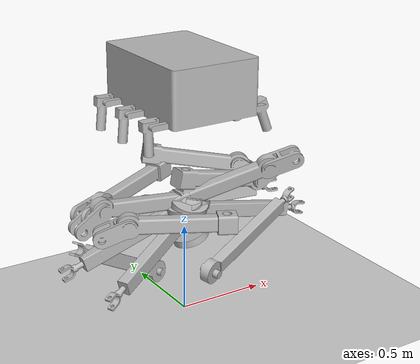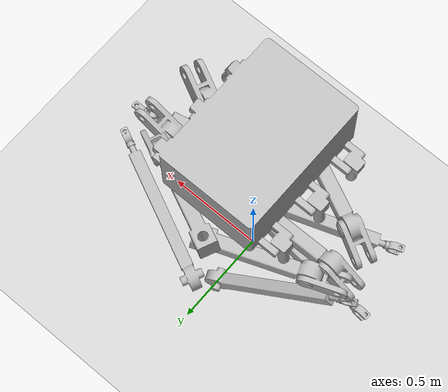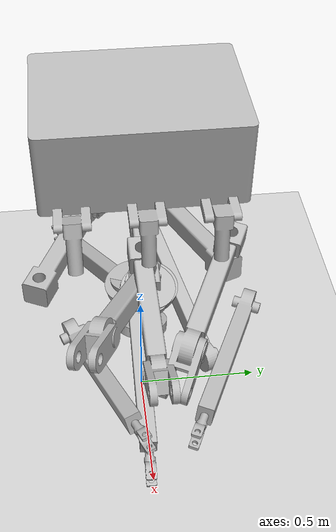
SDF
<?xml version="1.0"?>
<sdf version="1.6">
  <world name="default">
    <scene><ambient>0.55 0.55 0.55 1</ambient><background>0.7 0.7 0.75 1</background><shadows>false</shadows></scene>
    <light type="directional" name="sun"><pose>0 0 10 0 0 0</pose><diffuse>0.9 0.9 0.9 1</diffuse><specular>0.2 0.2 0.2 1</specular><direction>-0.5 0.3 -1</direction></light>
    <include><uri>model://ground_plane</uri></include>
    <model name="zhizhu"><pose>0 0 0.6012 0 0 0</pose>
      <link name="body">
        <visual name="visual"><pose>-0.0226 -0.0000 0.6012 0 0 0</pose><geometry><mesh><uri>file:///home/khalil/ROS/zhizhu/install/zhizhu_description/share/zhizhu_description/meshes/parts_urdf/body.stl</uri></mesh></geometry></visual>
        <collision name="collision"><pose>-0.0226 -0.0000 0.6012 0 0 0</pose><geometry><mesh><uri>file:///home/khalil/ROS/zhizhu/install/zhizhu_description/share/zhizhu_description/meshes/parts_urdf/body.stl</uri></mesh></geometry><surface><friction><ode><mu>0.5</mu><mu2>0.5</mu2></ode></friction></surface></collision>
        <inertial><mass>8.0</mass><inertia><ixx>0.45689595476533934</ixx><ixy>0</ixy><ixz>0</ixz><iyy>0.5383152171087394</iyy><iyz>0</iyz><izz>0.7347524621623359</izz></inertia></inertial>
      </link>
      <link name="rf_coxa">
        <visual name="visual"><pose>0.3762 0.1602 0.1338 0 0 0</pose><geometry><mesh><uri>file:///home/khalil/ROS/zhizhu/install/zhizhu_description/share/zhizhu_description/meshes/parts_urdf/rf_coxa.stl</uri></mesh></geometry></visual>
        <collision name="collision"><pose>0.3762 0.1602 0.1338 0 0 0</pose><geometry><mesh><uri>file:///home/khalil/ROS/zhizhu/install/zhizhu_description/share/zhizhu_description/meshes/parts_urdf/rf_coxa.stl</uri></mesh></geometry><surface><friction><ode><mu>0.5</mu><mu2>0.5</mu2></ode></friction></surface></collision>
        <inertial><mass>1.5</mass><inertia><ixx>0.029409616411273133</ixx><ixy>0</ixy><ixz>0</ixz><iyy>0.06889297061101934</iyy><iyz>0</iyz><izz>0.08034197432448811</izz></inertia></inertial>
      </link>
      <link name="rf_femur">
        <visual name="visual"><pose>0.4519 0.2318 -0.0762 0 0 0</pose><geometry><mesh><uri>file:///home/khalil/ROS/zhizhu/install/zhizhu_description/share/zhizhu_description/meshes/parts_urdf/rf_femur.stl</uri></mesh></geometry></visual>
        <collision name="collision"><pose>0.4519 0.2318 -0.0762 0 0 0</pose><geometry><mesh><uri>file:///home/khalil/ROS/zhizhu/install/zhizhu_description/share/zhizhu_description/meshes/parts_urdf/rf_femur.stl</uri></mesh></geometry><surface><friction><ode><mu>0.5</mu><mu2>0.5</mu2></ode></friction></surface></collision>
        <inertial><mass>1.0</mass><inertia><ixx>0.016682154859479735</ixx><ixy>0</ixy><ixz>0</ixz><iyy>0.05441733825343005</iyy><iyz>0</iyz><izz>0.06413692970520848</izz></inertia></inertial>
      </link>
      <link name="rf_foot">
        <visual name="visual"><pose>0.0112 0.0129 -0.0569 0 0 0</pose><geometry><mesh><uri>file:///home/khalil/ROS/zhizhu/install/zhizhu_description/share/zhizhu_description/meshes/parts_urdf/rf_foot.stl</uri></mesh></geometry></visual>
        <collision name="collision"><pose>0.0112 0.0129 -0.0569 0 0 0</pose><geometry><mesh><uri>file:///home/khalil/ROS/zhizhu/install/zhizhu_description/share/zhizhu_description/meshes/parts_urdf/rf_foot.stl</uri></mesh></geometry><surface><friction><ode><mu>1.0</mu><mu2>1.0</mu2></ode></friction></surface></collision>
        <inertial><mass>0.8</mass><inertia><ixx>0.00576613215545562</ixx><ixy>0</ixy><ixz>0</ixz><iyy>0.005753583412013892</iyy><iyz>0</iyz><izz>0.005517303129080313</izz></inertia></inertial>
      </link>
      <joint name="hip_rf" type="fixed"><parent>body</parent><child>rf_coxa</child></joint>
      <joint name="knee_rf" type="fixed"><parent>rf_coxa</parent><child>rf_femur</child></joint>
      <joint name="ankle_rf" type="fixed"><parent>rf_femur</parent><child>rf_foot</child></joint>
      <link name="rm_coxa">
        <visual name="visual"><pose>0.4242 0.0135 0.1161 0 0 0</pose><geometry><mesh><uri>file:///home/khalil/ROS/zhizhu/install/zhizhu_description/share/zhizhu_description/meshes/parts_urdf/rm_coxa.stl</uri></mesh></geometry></visual>
        <collision name="collision"><pose>0.4242 0.0135 0.1161 0 0 0</pose><geometry><mesh><uri>file:///home/khalil/ROS/zhizhu/install/zhizhu_description/share/zhizhu_description/meshes/parts_urdf/rm_coxa.stl</uri></mesh></geometry><surface><friction><ode><mu>0.5</mu><mu2>0.5</mu2></ode></friction></surface></collision>
        <inertial><mass>1.5</mass><inertia><ixx>0.008142651541770652</ixx><ixy>0</ixy><ixz>0</ixz><iyy>0.07276248128322552</iyy><iyz>0</iyz><izz>0.06798070097968605</izz></inertia></inertial>
      </link>
      <link name="rm_femur">
        <visual name="visual"><pose>0.5039 -0.0340 -0.0918 0 0 0</pose><geometry><mesh><uri>file:///home/khalil/ROS/zhizhu/install/zhizhu_description/share/zhizhu_description/meshes/parts_urdf/rm_femur.stl</uri></mesh></geometry></visual>
        <collision name="collision"><pose>0.5039 -0.0340 -0.0918 0 0 0</pose><geometry><mesh><uri>file:///home/khalil/ROS/zhizhu/install/zhizhu_description/share/zhizhu_description/meshes/parts_urdf/rm_femur.stl</uri></mesh></geometry><surface><friction><ode><mu>0.5</mu><mu2>0.5</mu2></ode></friction></surface></collision>
        <inertial><mass>1.0</mass><inertia><ixx>0.00626161059318745</ixx><ixy>0</ixy><ixz>0</ixz><iyy>0.06357089714033577</iyy><iyz>0</iyz><izz>0.059355992378542596</izz></inertia></inertial>
      </link>
      <link name="rm_foot">
        <visual name="visual"><pose>0.0076 0.0081 -0.0679 0 0 0</pose><geometry><mesh><uri>file:///home/khalil/ROS/zhizhu/install/zhizhu_description/share/zhizhu_description/meshes/parts_urdf/rm_foot.stl</uri></mesh></geometry></visual>
        <collision name="collision"><pose>0.0076 0.0081 -0.0679 0 0 0</pose><geometry><mesh><uri>file:///home/khalil/ROS/zhizhu/install/zhizhu_description/share/zhizhu_description/meshes/parts_urdf/rm_foot.stl</uri></mesh></geometry><surface><friction><ode><mu>1.0</mu><mu2>1.0</mu2></ode></friction></surface></collision>
        <inertial><mass>0.8</mass><inertia><ixx>0.005820744954945208</ixx><ixy>0</ixy><ixz>0</ixz><iyy>0.005821179579917087</iyy><iyz>0</iyz><izz>0.0054600799489079</izz></inertia></inertial>
      </link>
      <joint name="hip_rm" type="fixed"><parent>body</parent><child>rm_coxa</child></joint>
      <joint name="knee_rm" type="fixed"><parent>rm_coxa</parent><child>rm_femur</child></joint>
      <joint name="ankle_rm" type="fixed"><parent>rm_femur</parent><child>rm_foot</child></joint>
      <link name="rr_coxa">
        <visual name="visual"><pose>0.3716 -0.1473 0.1992 0 0 0</pose><geometry><mesh><uri>file:///home/khalil/ROS/zhizhu/install/zhizhu_description/share/zhizhu_description/meshes/parts_urdf/rr_coxa.stl</uri></mesh></geometry></visual>
        <collision name="collision"><pose>0.3716 -0.1473 0.1992 0 0 0</pose><geometry><mesh><uri>file:///home/khalil/ROS/zhizhu/install/zhizhu_description/share/zhizhu_description/meshes/parts_urdf/rr_coxa.stl</uri></mesh></geometry><surface><friction><ode><mu>0.5</mu><mu2>0.5</mu2></ode></friction></surface></collision>
        <inertial><mass>1.5</mass><inertia><ixx>0.03202336087056448</ixx><ixy>0</ixy><ixz>0</ixz><iyy>0.07498956091548961</iyy><iyz>0</iyz><izz>0.07843347488731861</izz></inertia></inertial>
      </link>
      <link name="rr_femur">
        <visual name="visual"><pose>0.4440 -0.1260 -0.1164 0 0 0</pose><geometry><mesh><uri>file:///home/khalil/ROS/zhizhu/install/zhizhu_description/share/zhizhu_description/meshes/parts_urdf/rr_femur.stl</uri></mesh></geometry></visual>
        <collision name="collision"><pose>0.4440 -0.1260 -0.1164 0 0 0</pose><geometry><mesh><uri>file:///home/khalil/ROS/zhizhu/install/zhizhu_description/share/zhizhu_description/meshes/parts_urdf/rr_femur.stl</uri></mesh></geometry><surface><friction><ode><mu>0.5</mu><mu2>0.5</mu2></ode></friction></surface></collision>
        <inertial><mass>1.0</mass><inertia><ixx>0.017112110895531444</ixx><ixy>0</ixy><ixz>0</ixz><iyy>0.0606315884135713</iyy><iyz>0</iyz><izz>0.060927667409476007</izz></inertia></inertial>
      </link>
      <link name="rr_foot">
        <visual name="visual"><pose>-0.0037 0.0244 -0.0656 0 0 0</pose><geometry><mesh><uri>file:///home/khalil/ROS/zhizhu/install/zhizhu_description/share/zhizhu_description/meshes/parts_urdf/rr_foot.stl</uri></mesh></geometry></visual>
        <collision name="collision"><pose>-0.0037 0.0244 -0.0656 0 0 0</pose><geometry><mesh><uri>file:///home/khalil/ROS/zhizhu/install/zhizhu_description/share/zhizhu_description/meshes/parts_urdf/rr_foot.stl</uri></mesh></geometry><surface><friction><ode><mu>1.0</mu><mu2>1.0</mu2></ode></friction></surface></collision>
        <inertial><mass>0.8</mass><inertia><ixx>0.005597406707224469</ixx><ixy>0</ixy><ixz>0</ixz><iyy>0.005517566550598866</iyy><iyz>0</iyz><izz>0.00544936758127003</izz></inertia></inertial>
      </link>
      <joint name="hip_rr" type="fixed"><parent>body</parent><child>rr_coxa</child></joint>
      <joint name="knee_rr" type="fixed"><parent>rr_coxa</parent><child>rr_femur</child></joint>
      <joint name="ankle_rr" type="fixed"><parent>rr_femur</parent><child>rr_foot</child></joint>
      <link name="lf_coxa">
        <visual name="visual"><pose>-0.3739 0.1531 0.0876 0 0 0</pose><geometry><mesh><uri>file:///home/khalil/ROS/zhizhu/install/zhizhu_description/share/zhizhu_description/meshes/parts_urdf/lf_coxa.stl</uri></mesh></geometry></visual>
        <collision name="collision"><pose>-0.3739 0.1531 0.0876 0 0 0</pose><geometry><mesh><uri>file:///home/khalil/ROS/zhizhu/install/zhizhu_description/share/zhizhu_description/meshes/parts_urdf/lf_coxa.stl</uri></mesh></geometry><surface><friction><ode><mu>0.5</mu><mu2>0.5</mu2></ode></friction></surface></collision>
        <inertial><mass>1.5</mass><inertia><ixx>0.02125395047617179</ixx><ixy>0</ixy><ixz>0</ixz><iyy>0.06971999675005905</iyy><iyz>0</iyz><izz>0.08393330989108352</izz></inertia></inertial>
      </link>
      <link name="lf_femur">
        <visual name="visual"><pose>-0.4183 0.1350 -0.2354 0 0 0</pose><geometry><mesh><uri>file:///home/khalil/ROS/zhizhu/install/zhizhu_description/share/zhizhu_description/meshes/parts_urdf/lf_femur.stl</uri></mesh></geometry></visual>
        <collision name="collision"><pose>-0.4183 0.1350 -0.2354 0 0 0</pose><geometry><mesh><uri>file:///home/khalil/ROS/zhizhu/install/zhizhu_description/share/zhizhu_description/meshes/parts_urdf/lf_femur.stl</uri></mesh></geometry><surface><friction><ode><mu>0.5</mu><mu2>0.5</mu2></ode></friction></surface></collision>
        <inertial><mass>1.0</mass><inertia><ixx>0.029090709419882045</ixx><ixy>0</ixy><ixz>0</ixz><iyy>0.06317239065071024</iyy><iyz>0</iyz><izz>0.05148986630641918</izz></inertia></inertial>
      </link>
      <link name="lf_foot">
        <visual name="visual"><pose>0.0265 -0.0059 -0.0642 0 0 0</pose><geometry><mesh><uri>file:///home/khalil/ROS/zhizhu/install/zhizhu_description/share/zhizhu_description/meshes/parts_urdf/lf_foot.stl</uri></mesh></geometry></visual>
        <collision name="collision"><pose>0.0265 -0.0059 -0.0642 0 0 0</pose><geometry><mesh><uri>file:///home/khalil/ROS/zhizhu/install/zhizhu_description/share/zhizhu_description/meshes/parts_urdf/lf_foot.stl</uri></mesh></geometry><surface><friction><ode><mu>1.0</mu><mu2>1.0</mu2></ode></friction></surface></collision>
        <inertial><mass>0.8</mass><inertia><ixx>0.005827255531603755</ixx><ixy>0</ixy><ixz>0</ixz><iyy>0.00580956447003926</iyy><iyz>0</iyz><izz>0.005511514653354351</izz></inertia></inertial>
      </link>
      <joint name="hip_lf" type="fixed"><parent>body</parent><child>lf_coxa</child></joint>
      <joint name="knee_lf" type="fixed"><parent>lf_coxa</parent><child>lf_femur</child></joint>
      <joint name="ankle_lf" type="fixed"><parent>lf_femur</parent><child>lf_foot</child></joint>
      <link name="lm_coxa">
        <visual name="visual"><pose>-0.4133 0.0314 0.0647 0 0 0</pose><geometry><mesh><uri>file:///home/khalil/ROS/zhizhu/install/zhizhu_description/share/zhizhu_description/meshes/parts_urdf/lm_coxa.stl</uri></mesh></geometry></visual>
        <collision name="collision"><pose>-0.4133 0.0314 0.0647 0 0 0</pose><geometry><mesh><uri>file:///home/khalil/ROS/zhizhu/install/zhizhu_description/share/zhizhu_description/meshes/parts_urdf/lm_coxa.stl</uri></mesh></geometry><surface><friction><ode><mu>0.5</mu><mu2>0.5</mu2></ode></friction></surface></collision>
        <inertial><mass>1.5</mass><inertia><ixx>0.00631194997026443</ixx><ixy>0</ixy><ixz>0</ixz><iyy>0.07005361498956408</iyy><iyz>0</iyz><izz>0.06710253625753083</izz></inertia></inertial>
      </link>
      <link name="lm_femur">
        <visual name="visual"><pose>-0.4518 0.0333 -0.1382 0 0 0</pose><geometry><mesh><uri>file:///home/khalil/ROS/zhizhu/install/zhizhu_description/share/zhizhu_description/meshes/parts_urdf/lm_femur.stl</uri></mesh></geometry></visual>
        <collision name="collision"><pose>-0.4518 0.0333 -0.1382 0 0 0</pose><geometry><mesh><uri>file:///home/khalil/ROS/zhizhu/install/zhizhu_description/share/zhizhu_description/meshes/parts_urdf/lm_femur.stl</uri></mesh></geometry><surface><friction><ode><mu>0.5</mu><mu2>0.5</mu2></ode></friction></surface></collision>
        <inertial><mass>1.0</mass><inertia><ixx>0.010460503529999114</ixx><ixy>0</ixy><ixz>0</ixz><iyy>0.06523651070922683</iyy><iyz>0</iyz><izz>0.05682271314822952</izz></inertia></inertial>
      </link>
      <link name="lm_foot">
        <visual name="visual"><pose>0.0098 -0.0081 -0.0653 0 0 0</pose><geometry><mesh><uri>file:///home/khalil/ROS/zhizhu/install/zhizhu_description/share/zhizhu_description/meshes/parts_urdf/lm_foot.stl</uri></mesh></geometry></visual>
        <collision name="collision"><pose>0.0098 -0.0081 -0.0653 0 0 0</pose><geometry><mesh><uri>file:///home/khalil/ROS/zhizhu/install/zhizhu_description/share/zhizhu_description/meshes/parts_urdf/lm_foot.stl</uri></mesh></geometry><surface><friction><ode><mu>1.0</mu><mu2>1.0</mu2></ode></friction></surface></collision>
        <inertial><mass>0.8</mass><inertia><ixx>0.005646975215348027</ixx><ixy>0</ixy><ixz>0</ixz><iyy>0.005682775276875377</iyy><iyz>0</iyz><izz>0.005495442169125834</izz></inertia></inertial>
      </link>
      <joint name="hip_lm" type="fixed"><parent>body</parent><child>lm_coxa</child></joint>
      <joint name="knee_lm" type="fixed"><parent>lm_coxa</parent><child>lm_femur</child></joint>
      <joint name="ankle_lm" type="fixed"><parent>lm_femur</parent><child>lm_foot</child></joint>
      <link name="lr_coxa">
        <visual name="visual"><pose>-0.3733 -0.2018 0.0580 0 0 0</pose><geometry><mesh><uri>file:///home/khalil/ROS/zhizhu/install/zhizhu_description/share/zhizhu_description/meshes/parts_urdf/lr_coxa.stl</uri></mesh></geometry></visual>
        <collision name="collision"><pose>-0.3733 -0.2018 0.0580 0 0 0</pose><geometry><mesh><uri>file:///home/khalil/ROS/zhizhu/install/zhizhu_description/share/zhizhu_description/meshes/parts_urdf/lr_coxa.stl</uri></mesh></geometry><surface><friction><ode><mu>0.5</mu><mu2>0.5</mu2></ode></friction></surface></collision>
        <inertial><mass>1.5</mass><inertia><ixx>0.023829536418199543</ixx><ixy>0</ixy><ixz>0</ixz><iyy>0.0659409861085406</iyy><iyz>0</iyz><izz>0.08297008186327784</izz></inertia></inertial>
      </link>
      <link name="lr_femur">
        <visual name="visual"><pose>-0.3955 -0.2162 -0.1580 0 0 0</pose><geometry><mesh><uri>file:///home/khalil/ROS/zhizhu/install/zhizhu_description/share/zhizhu_description/meshes/parts_urdf/lr_femur.stl</uri></mesh></geometry></visual>
        <collision name="collision"><pose>-0.3955 -0.2162 -0.1580 0 0 0</pose><geometry><mesh><uri>file:///home/khalil/ROS/zhizhu/install/zhizhu_description/share/zhizhu_description/meshes/parts_urdf/lr_femur.stl</uri></mesh></geometry><surface><friction><ode><mu>0.5</mu><mu2>0.5</mu2></ode></friction></surface></collision>
        <inertial><mass>1.0</mass><inertia><ixx>0.022632515655121387</ixx><ixy>0</ixy><ixz>0</ixz><iyy>0.05695511914260272</iyy><iyz>0</iyz><izz>0.06072435572952326</izz></inertia></inertial>
      </link>
      <link name="lr_foot">
        <visual name="visual"><pose>0.0002 -0.0129 -0.0580 0 0 0</pose><geometry><mesh><uri>file:///home/khalil/ROS/zhizhu/install/zhizhu_description/share/zhizhu_description/meshes/parts_urdf/lr_foot.stl</uri></mesh></geometry></visual>
        <collision name="collision"><pose>0.0002 -0.0129 -0.0580 0 0 0</pose><geometry><mesh><uri>file:///home/khalil/ROS/zhizhu/install/zhizhu_description/share/zhizhu_description/meshes/parts_urdf/lr_foot.stl</uri></mesh></geometry><surface><friction><ode><mu>1.0</mu><mu2>1.0</mu2></ode></friction></surface></collision>
        <inertial><mass>0.8</mass><inertia><ixx>0.005743090634122927</ixx><ixy>0</ixy><ixz>0</ixz><iyy>0.0057096062255567</iyy><iyz>0</iyz><izz>0.005496366250098998</izz></inertia></inertial>
      </link>
      <joint name="hip_lr" type="fixed"><parent>body</parent><child>lr_coxa</child></joint>
      <joint name="knee_lr" type="fixed"><parent>lr_coxa</parent><child>lr_femur</child></joint>
      <joint name="ankle_lr" type="fixed"><parent>lr_femur</parent><child>lr_foot</child></joint>
    </model>
  </world>
</sdf>
